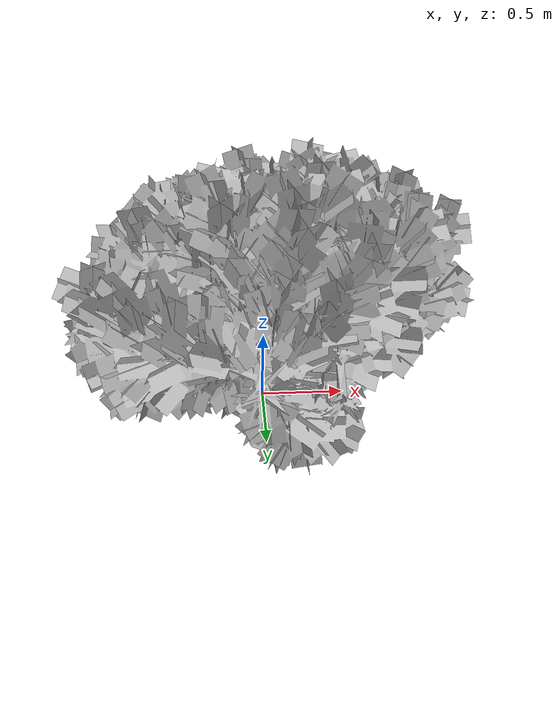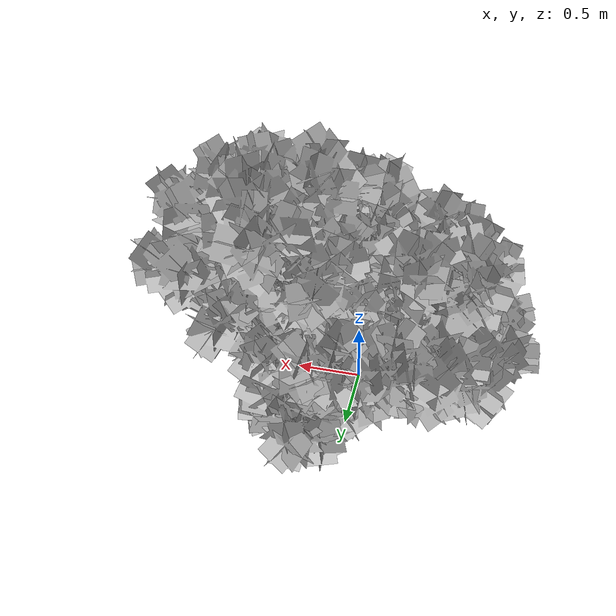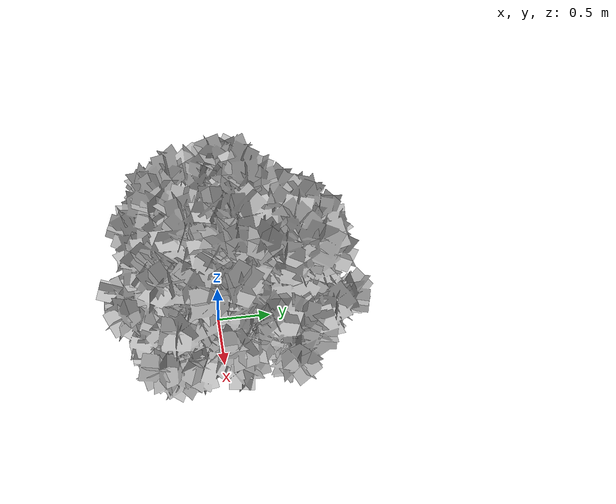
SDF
<?xml version="1.0" ?>
<sdf version="1.6">
  <model name="bush9">
    <static>1</static>
    <link name="link">

      <visual name="branch">
        <geometry>
          <mesh>
            <uri>model://bush9/meshes/OC29_9.obj</uri>
          </mesh>
        </geometry>
       <transparency>0.000</transparency>
        <cast_shadows>1</cast_shadows>
      </visual>
    </link>
  </model>
</sdf>
